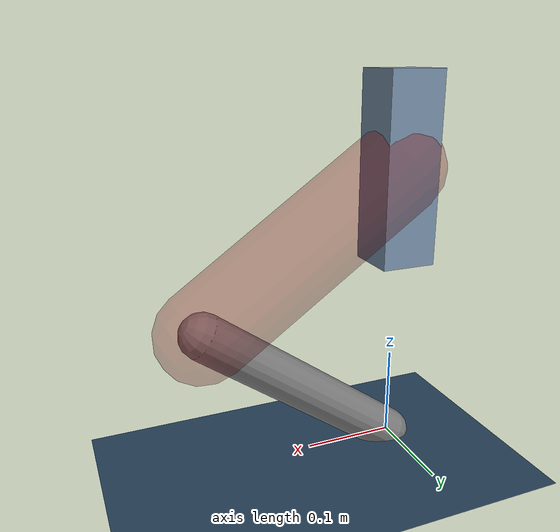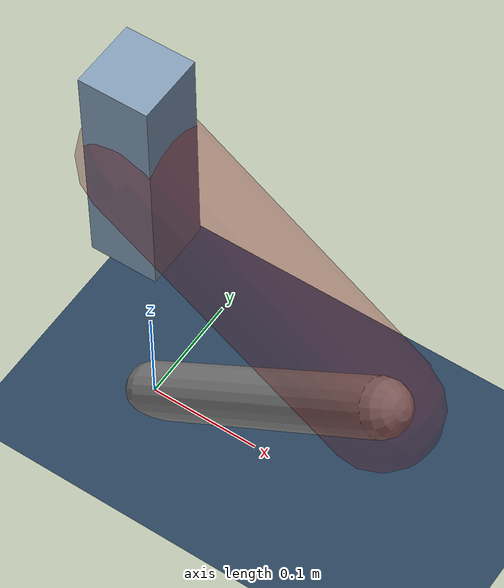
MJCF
<mujoco model="Hopper2D">
	<compiler inertiafromgeom="true" angle="radian" />
	<option timestep="0.001" integrator="implicit" cone="elliptic" solver="Newton" tolerance="1e-10" />

	<default>
		<geom contype="1" conaffinity="1" condim="3" friction="2 0.005 0.0001" solref="0.005 1" />
		<joint limited="true" damping="0.1" />
	</default>

	<asset>
		<texture name="skybox" type="skybox" builtin="gradient" rgb1=".4 .6 .8" rgb2="0 0 0" width="800" height="800" />
		<texture name="grid" type="2d" builtin="checker" rgb1=".1 .2 .3" rgb2=".2 .3 .4" width="300" height="300" mark="edge" markrgb=".2 .3 .4" />
		<material name="ground" texture="grid" texrepeat="1 1" texuniform="true" reflectance="0.1" />
		<material name="leg" rgba="0.5 0.6 0.7 1" />
	</asset>

	<worldbody>

		<geom name="floor" type="plane" size="5 5 0.25" material="ground" />

		<light directional="false" diffuse="0.8 0.8 0.8" specular="0.3 0.3 0.3" pos="0 0 2" dir="0 0 -1" />
		<light mode="targetbodycom" target="base" directional="false" diffuse="0.8 0.8 0.8" specular="0.3 0.3 0.3" pos="0 0 2" dir="0 0 -1" />

		<camera name="fixed" pos="0 -2 1" xyaxes="1 0 0 0 0 1" />
		<camera name="tracking" mode="trackcom" pos="0 -3 1" />

		<body name="root" pos="0 0 0.312294459584857">
			<joint name="slide_x" type="slide" axis="1 0 0" range="-100 100" />
			<joint name="slide_z" type="slide" axis="0 0 1" range="0 10" />

			<body name="base" pos="0 0 0">
				<geom name="torso" type="box" size="0.03 0.03 0.1" mass="4.456" material="leg" />

				<body name="link1" pos="0 0 0" euler="0 0.6128561757818123 0">
					<joint type="hinge" axis="0 -1 0" pos="0 0 0" name="hinge1" limited="true" range="-3.14 3.14" stiffness="0" damping="0.1" />
					<geom name="thigh" type="capsule" fromto="0 0 0 0.2667327436992895 0 0" size="0.05" rgba="0.5 0 0 0.3" mass="0.9000784079880817" />

					<body name="link2" pos="0.2667327436992895 0 0" euler="0 1.8993865681951885 0">
						<joint type="hinge" axis="0 -1 0" pos="0 0 0" name="hinge2" limited="true" range="-3.14 3.14" stiffness="0" damping="0.1" />
						<geom name="shank" type="capsule" fromto="0 0 0 0.2698996206112252 0 0" size="0.025" mass="0.45881969648898013" />

					</body>
				</body>
			</body>
		</body>
	</worldbody>

	<actuator>
		<motor name="torque1" joint="hinge1" ctrlrange="-251.98335610227028 251.98335610227028" ctrllimited="true" gear="1" />
		<motor name="torque2" joint="hinge2" ctrlrange="-64.21976244431545 64.21976244431545" ctrllimited="true" gear="1" />
	</actuator>
</mujoco>
